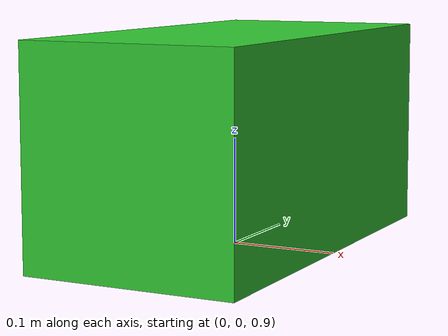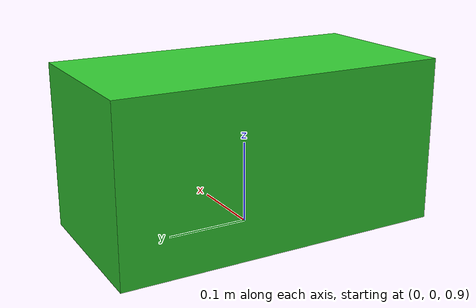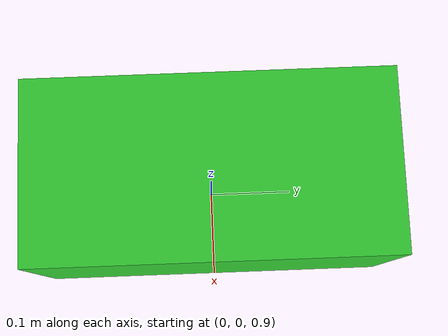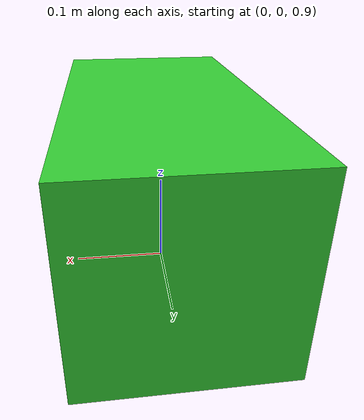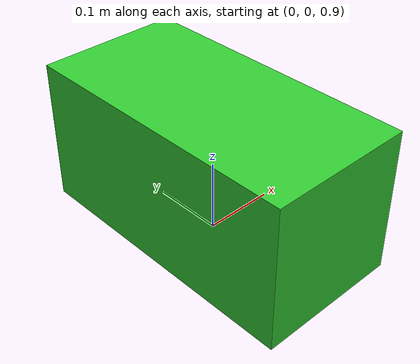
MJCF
<mujoco model="Box Gravity Scene">
  <compiler autolimits="true"/>

  <option gravity="0 0 -9.81" timestep="0.002"/>

  <size memory="1M"/>

  <visual>
    <global azimuth="135" elevation="-20"/>
    <headlight ambient="0.4 0.4 0.4" diffuse="0.8 0.8 0.8" specular="0.1 0.1 0.1"/>
  </visual>

  <statistic meansize="0.1" extent="1.0"/>

  <default>
    <geom solref="0.02 1" solimp="0.9 0.95 0.001"/>
  </default>

  <worldbody>
    <!-- Ground plane -->
    <geom name="ground" type="plane" size="2 2 0.1" rgba="0.8 0.8 0.8 1"
          pos="0 0 -0.1"/>

    <!-- Simple box that will fall under gravity -->
    <body name="box" pos="0 0 1.0" quat="1 0 0 0">
      <freejoint/>
      <inertial pos="0.0 0.0 1.0"
        mass="15"
        fullinertia="0.487300 0.409630 0.127850 -0.000536 0.002029 -0.001415" />
      <geom name="box_geom" type="box" size="0.1 0.2 0.1" rgba="0.2 0.8 0.2 1"/>
      <site name="box_center" pos="0 0 0" size="0.01"/>
    </body>

    <!-- Light source -->
    <light pos="0 0 2" dir="0 0 -1" diffuse="0.8 0.8 0.8"/>
  </worldbody>

  <actuator>
    <!-- No actuators needed for free-falling box -->
  </actuator>
</mujoco>
